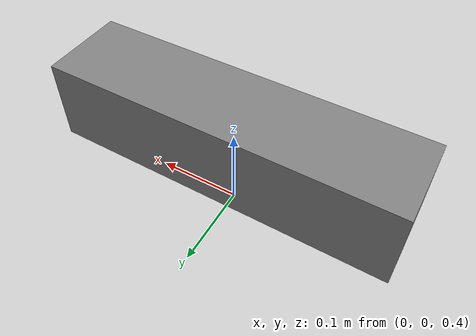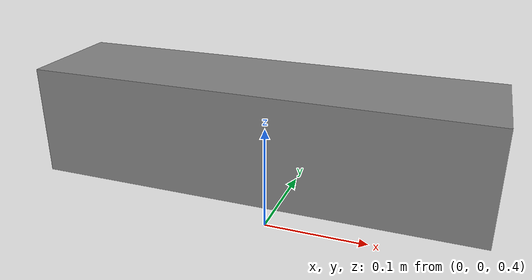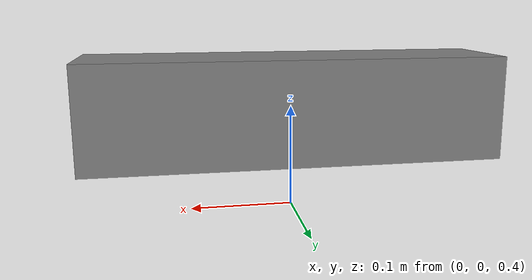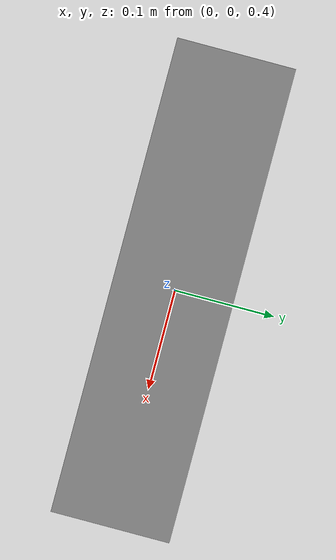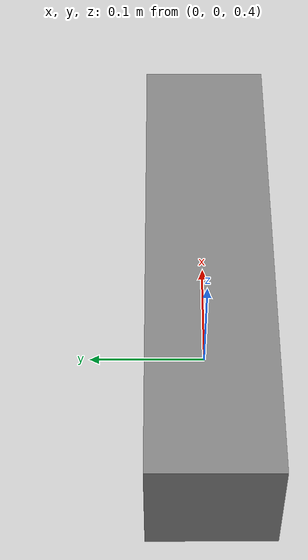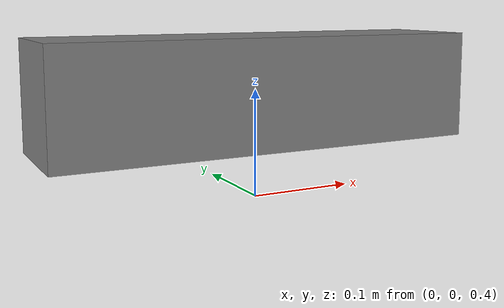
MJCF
<mujoco model="muscle_limited">
            <worldbody>
                <body name="arm" pos="0 0 0.5">
                    <joint name="hinge" type="hinge" axis="0 0 1"
                           limited="true" range="-90 90"/>
                    <geom type="box" size="0.2 0.05 0.05" mass="2.0"/>
                </body>
            </worldbody>
            <actuator>
                <muscle name="mus" joint="hinge" gear="2"/>
            </actuator>
        </mujoco>
